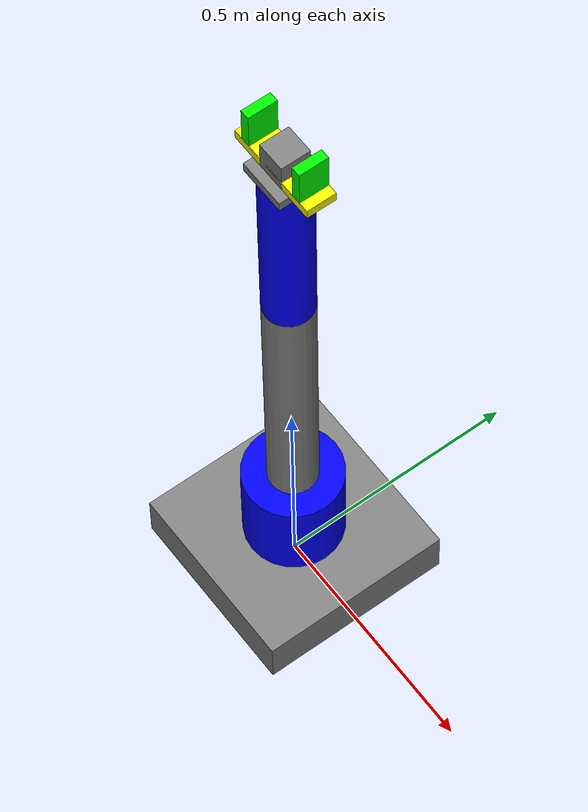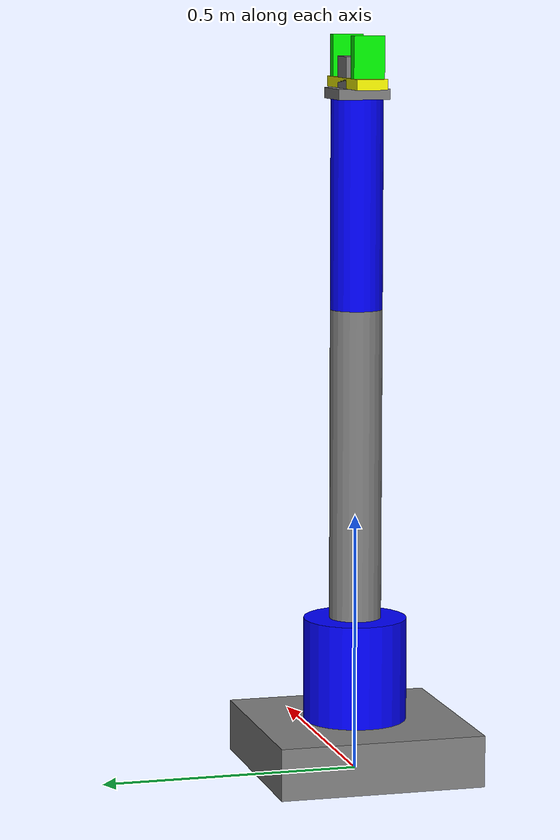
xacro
<?xml version="1.0"?>
<robot xmlns:xacro="http://www.ros.org/wiki/xacro" name="my_robot">

  <xacro:arg name="initial_positions_file"
    default="$(find my_robot_moveit_config)/config/initial_positions.yaml"/>
  <xacro:arg name="payload_mass" default="0.0"/>
  <xacro:arg name="use_sim"      default="false"/>

  <!-- Include full robot from my_robot_description (ros2_control is already inside) -->
  <xacro:include filename="$(find my_robot_description)/urdf/my_robot.urdf.xacro"/>

</robot>

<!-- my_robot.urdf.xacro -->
<robot xmlns:xacro="http://www.ros.org/wiki/xacro" name="my_robot">

  <xacro:arg name="initial_positions_file"
    default="$(find my_robot_description)/urdf/initial_positions.yaml"/>
  <xacro:arg name="payload_mass" default="0.0"/>
  <xacro:arg name="use_sim"      default="true"/>

  <!-- Include all components -->
  <xacro:include filename="$(find my_robot_description)/urdf/common_properties.xacro"/>
  <xacro:include filename="$(find my_robot_description)/urdf/arm.xacro"/>
  <xacro:include filename="$(find my_robot_description)/urdf/gripper.xacro"/>
  <xacro:include filename="$(find my_robot_description)/urdf/my_robot.ros2_control.xacro"/>

  <!-- Gripper joint -->
  <joint name="gripper_base_joint" type="fixed">
    <parent link="tool_link"/>
    <child  link="gripper_base_link"/>
    <origin xyz="0 0 0" rpy="0 0 0"/>
  </joint>

  <!-- Instantiate the ros2_control macro -->
  <xacro:my_robot_ros2_control
    name="my_robot"
    initial_positions_file="$(arg initial_positions_file)"
    use_sim="$(arg use_sim)"/>

</robot>

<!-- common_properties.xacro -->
<robot xmlns:xacro="http://www.ros.org/wiki/xacro" >

    <material name="grey">
        <color rgba="0.5 0.5 0.5 0.95" />
    </material>

    <material name="blue">
        <color rgba="0 0 1 0.95" />
    </material>

    <material name = "yellow" >
        <color rgba = "1 1 0 0.95" />
    </material>

    <material name = "green" >
        <color rgba = "0 1 0 0.95" />
    </material>

</robot>

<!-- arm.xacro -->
<robot xmlns:xacro="http://www.ros.org/wiki/xacro">

  <xacro:arg name="payload_mass" default="0.0"/>

  <!-- ═══════════════ BASE ═══════════════ -->
  <link name="base_link">
    <visual>
      <geometry><box size="0.4 0.4 0.1"/></geometry>
      <origin xyz="0 0 0.05" rpy="0 0 0"/>
      <material name="grey"/>
    </visual>
    <collision>
      <geometry><box size="0.4 0.4 0.1"/></geometry>
      <origin xyz="0 0 0.05" rpy="0 0 0"/>
    </collision>
    <inertial>
      <origin xyz="0 0 0.05" rpy="0 0 0"/>
      <mass value="5.0"/>
      <inertia ixx="0.0433" ixy="0" ixz="0"
               iyy="0.0433" iyz="0" izz="0.0833"/>
    </inertial>
  </link>

  <!-- ═══════════════ SHOULDER ═══════════════ -->
  <link name="shoulder_link">
    <visual>
      <geometry><cylinder length="0.2" radius="0.1"/></geometry>
      <origin xyz="0 0 0.1" rpy="0 0 0"/>
      <material name="blue"/>
    </visual>
    <collision>
      <geometry><box size="0.2 0.2 0.2"/></geometry>
      <origin xyz="0 0 0.1" rpy="0 0 0"/>
    </collision>
    <inertial>
      <origin xyz="0 0 0.1" rpy="0 0 0"/>
      <mass value="1.5"/>
      <inertia ixx="0.0108" ixy="0" ixz="0"
               iyy="0.0108" iyz="0" izz="0.0075"/>
    </inertial>
  </link>

  <!-- ═══════════════ ARM ═══════════════ -->
  <link name="arm_link">
    <visual>
      <geometry><cylinder length="0.6" radius="0.05"/></geometry>
      <origin xyz="0 0 0.3" rpy="0 0 0"/>
      <material name="grey"/>
    </visual>
    <collision>
      <geometry><box size="0.1 0.1 0.6"/></geometry>
      <origin xyz="0 0 0.3" rpy="0 0 0"/>
    </collision>
    <inertial>
      <origin xyz="0 0 0.3" rpy="0 0 0"/>
      <mass value="1.0"/>
      <inertia ixx="0.0308" ixy="0" ixz="0"
               iyy="0.0308" iyz="0" izz="0.00125"/>
    </inertial>
  </link>

  <!-- ═══════════════ ELBOW ═══════════════ -->
  <link name="elbow_link">
    <visual>
      <geometry><cylinder length="0.4" radius="0.05"/></geometry>
      <origin xyz="0 0 0.2" rpy="0 0 0"/>
      <material name="blue"/>
    </visual>
    <collision>
      <geometry><box size="0.1 0.1 0.4"/></geometry>
      <origin xyz="0 0 0.2" rpy="0 0 0"/>
    </collision>
    <inertial>
      <origin xyz="0 0 0.2" rpy="0 0 0"/>
      <mass value="0.8"/>
      <inertia ixx="0.0109" ixy="0" ixz="0"
               iyy="0.0109" iyz="0" izz="0.001"/>
    </inertial>
  </link>

  <!-- ═══════════════ HAND ═══════════════ -->
  <link name="hand_link">
    <visual>
      <geometry><box size="0.1 0.1 0.02"/></geometry>
      <origin xyz="0 0 0.01" rpy="0 0 0"/>
      <material name="grey"/>
    </visual>
    <collision>
      <geometry><box size="0.1 0.1 0.02"/></geometry>
      <origin xyz="0 0 0.01" rpy="0 0 0"/>
    </collision>
    <inertial>
      <origin xyz="0 0 0.01" rpy="0 0 0"/>
      <mass value="0.3"/>
      <inertia ixx="0.000255" ixy="0" ixz="0"
               iyy="0.000255" iyz="0" izz="0.0005"/>
    </inertial>
  </link>

  <link name="tool_link"/>

  <!-- ═══════════════ PAYLOAD (mass changes per experiment) ═══════════════ -->
  <link name="payload_link">
    <visual>
      <geometry><box size="0.06 0.06 0.06"/></geometry>
      <origin xyz="0 0 0.03" rpy="0 0 0"/>
      <material name="grey"/>
    </visual>
    <collision>
      <geometry><box size="0.06 0.06 0.06"/></geometry>
      <origin xyz="0 0 0.03" rpy="0 0 0"/>
    </collision>
    <inertial>
      <origin xyz="0 0 0.03" rpy="0 0 0"/>
      <mass value="$(arg payload_mass)"/>
      <inertia
        ixx="${max(0.0001, $(arg payload_mass) * 0.0006)}"
        ixy="0" ixz="0"
        iyy="${max(0.0001, $(arg payload_mass) * 0.0006)}"
        iyz="0"
        izz="${max(0.0001, $(arg payload_mass) * 0.0006)}"/>
    </inertial>
  </link>

  <!-- Dummy world link — fixes KDL root inertia warning -->
  <link name="world"/>
  <joint name="world_base_joint" type="fixed">
    <parent link="world"/>
    <child link="base_link"/>
    <origin xyz="0 0 0" rpy="0 0 0"/>
  </joint>

  <!-- ═══════════════ JOINTS ═══════════════ -->

  <joint name="joint1" type="revolute">
    <parent link="base_link"/>
    <child link="shoulder_link"/>
    <origin xyz="0 0 0.1" rpy="0 0 0"/>
    <axis xyz="0 0 1"/>
    <limit effort="150.0" velocity="2.0" lower="-3.14" upper="3.14"/>
    <!-- Real-world damping: joint1 (base) supports full arm, heaviest load -->
    <!-- damping: viscous damping (Nm·s/rad), friction: Coulomb friction (Nm) -->
    <dynamics damping="1.0" friction="0.3"/>
  </joint>

  <joint name="joint2" type="revolute">
    <parent link="shoulder_link"/>
    <child link="arm_link"/>
    <origin xyz="0 0 0.2" rpy="0 0 0"/>
    <axis xyz="0 1 0"/>
    <limit effort="150.0" velocity="2.0" lower="0" upper="2.5"/>
    <!-- joint2 (shoulder): significant load, high damping for stability -->
    <dynamics damping="0.8" friction="0.25"/>
  </joint>

  <joint name="joint3" type="revolute">
    <parent link="arm_link"/>
    <child link="elbow_link"/>
    <origin xyz="0 0 0.6" rpy="0 0 0"/>
    <axis xyz="0 1 0"/>
    <limit effort="100.0" velocity="2.0" lower="0" upper="2.5"/>
    <!-- joint3 (elbow): medium load and damping -->
    <dynamics damping="0.6" friction="0.15"/>
  </joint>

  <joint name="joint4" type="revolute">
    <parent link="elbow_link"/>
    <child link="hand_link"/>
    <origin xyz="0 0 0.4" rpy="0 0 0"/>
    <axis xyz="0 0 1"/>
    <limit effort="50.0" velocity="3.0" lower="-3.14" upper="3.14"/>
    <!-- joint4 (wrist/tool): light load, minimal damping for precision -->
    <dynamics damping="0.2" friction="0.08"/>
  </joint>

  <joint name="hand_tool_joint" type="fixed">
    <parent link="hand_link"/>
    <child link="tool_link"/>
    <origin xyz="0 0 0.02" rpy="0 0 0"/>
  </joint>

  <joint name="payload_joint" type="fixed">
    <parent link="tool_link"/>
    <child link="payload_link"/>
    <origin xyz="0 0 0" rpy="0 0 0"/>
  </joint>

</robot>

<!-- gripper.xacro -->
<robot xmlns:xacro="http://www.ros.org/wiki/xacro">

  <link name="gripper_base_link">
    <visual>
      <geometry><box size="0.2 0.06 0.02"/></geometry>
      <origin xyz="0 0 0.01" rpy="0 0 0"/>
      <material name="yellow"/>
    </visual>
    <collision>
      <geometry><box size="0.2 0.06 0.02"/></geometry>
      <origin xyz="0 0 0.01" rpy="0 0 0"/>
    </collision>
    <inertial>
      <origin xyz="0 0 0.01" rpy="0 0 0"/>
      <mass value="0.2"/>
      <!-- box 0.2 x 0.06 x 0.02 -->
      <inertia ixx="0.000063" ixy="0" ixz="0"
               iyy="0.000673" iyz="0" izz="0.000703"/>
    </inertial>
  </link>

  <link name="left_finger_link">
    <visual>
      <geometry><box size="0.02 0.06 0.08"/></geometry>
      <origin xyz="0 0 0.04" rpy="0 0 0"/>
      <material name="green"/>
    </visual>
    <collision>
      <geometry><box size="0.02 0.06 0.08"/></geometry>
      <origin xyz="0 0 0.04" rpy="0 0 0"/>
    </collision>
    <inertial>
      <origin xyz="0 0 0.04" rpy="0 0 0"/>
      <mass value="0.05"/>
      <!-- box 0.02 x 0.06 x 0.08 -->
      <inertia ixx="0.0000417" ixy="0" ixz="0"
               iyy="0.0000350" iyz="0" izz="0.0000100"/>
    </inertial>
  </link>

  <link name="right_finger_link">
    <visual>
      <geometry><box size="0.02 0.06 0.08"/></geometry>
      <origin xyz="0 0 0.04" rpy="0 0 0"/>
      <material name="green"/>
    </visual>
    <collision>
      <geometry><box size="0.02 0.06 0.08"/></geometry>
      <origin xyz="0 0 0.04" rpy="0 0 0"/>
    </collision>
    <inertial>
      <origin xyz="0 0 0.04" rpy="0 0 0"/>
      <mass value="0.05"/>
      <inertia ixx="0.0000417" ixy="0" ixz="0"
               iyy="0.0000350" iyz="0" izz="0.0000100"/>
    </inertial>
  </link>

  <joint name="gripper_left_finger_joint" type="prismatic">
    <parent link="gripper_base_link"/>
    <child link="left_finger_link"/>
    <origin xyz="-0.07 0 0.02" rpy="0 0 0"/>
    <axis xyz="1 0 0"/>
    <limit effort="100" velocity="1.0" lower="0.0" upper="0.06"/>
  </joint>

  <joint name="gripper_right_finger_joint" type="prismatic">
    <parent link="gripper_base_link"/>
    <child link="right_finger_link"/>
    <origin xyz="0.07 0 0.02" rpy="0 0 0"/>
    <axis xyz="1 0 0"/>
    <!-- Note: Mimic constraint removed for Gazebo compatibility -->
    <!-- Gazebo ODE physics engine doesn't support mimic joints -->
    <!-- Fingers can be controlled independently or synchronized via controller -->
    <limit effort="100" velocity="1.0" lower="-0.06" upper="0.0"/>
  </joint>

</robot>
